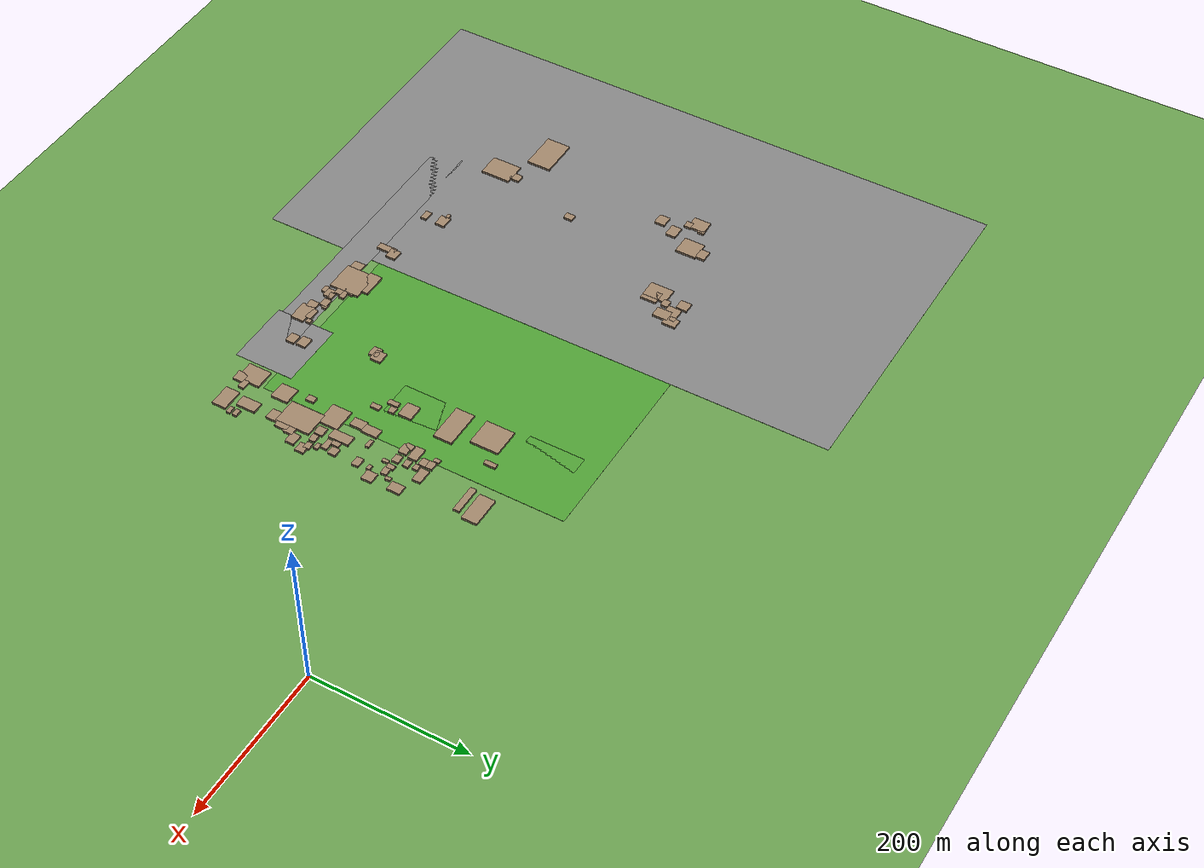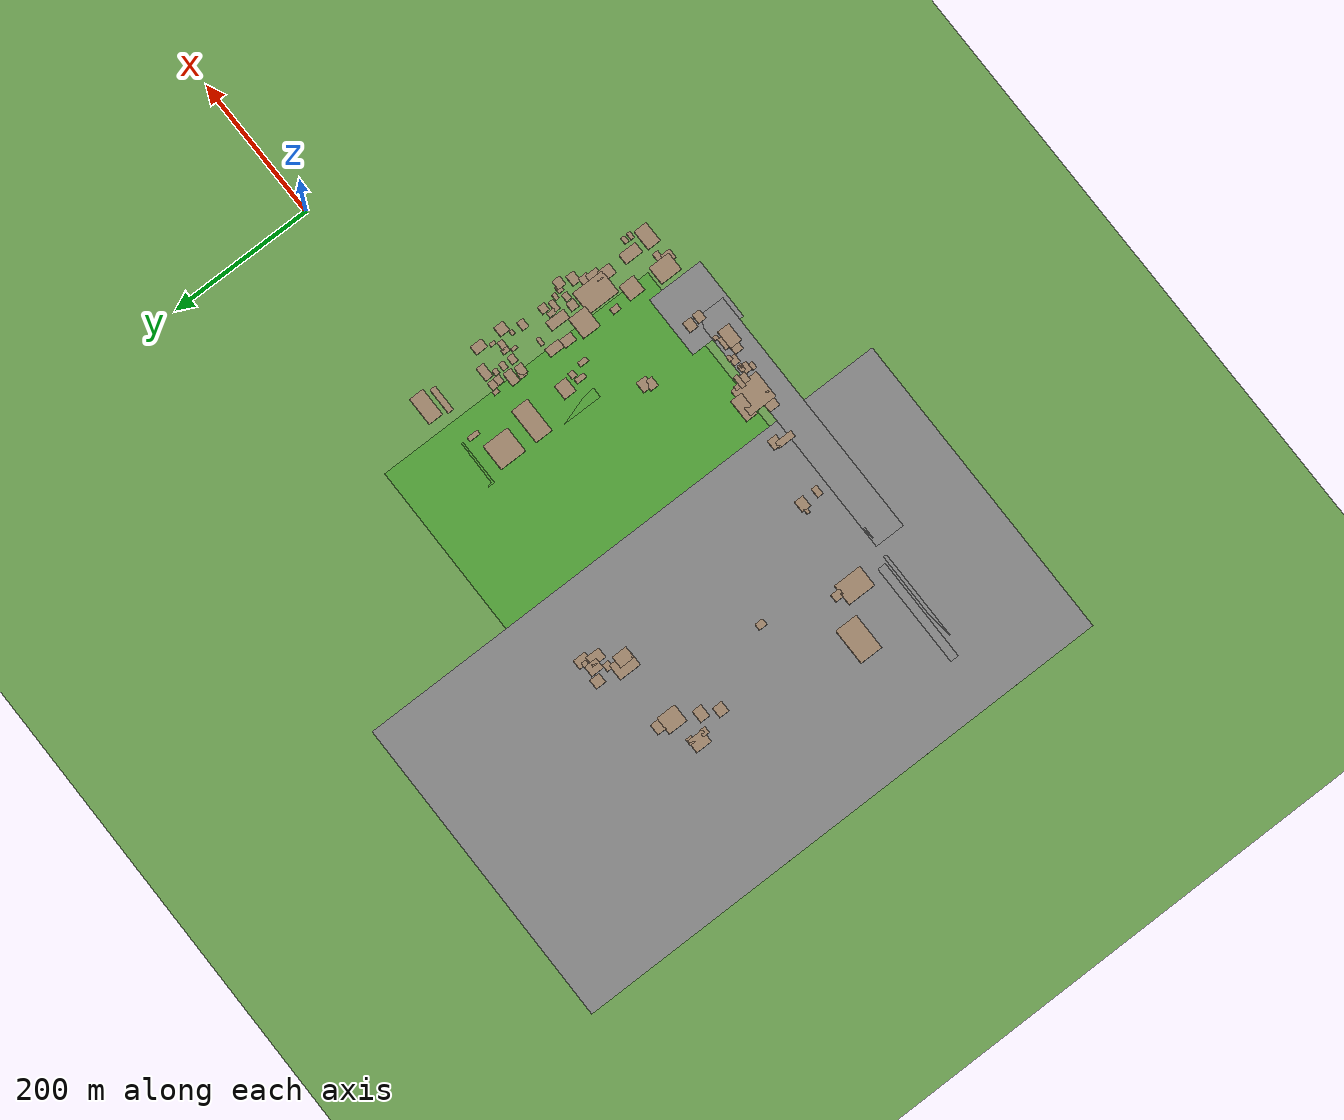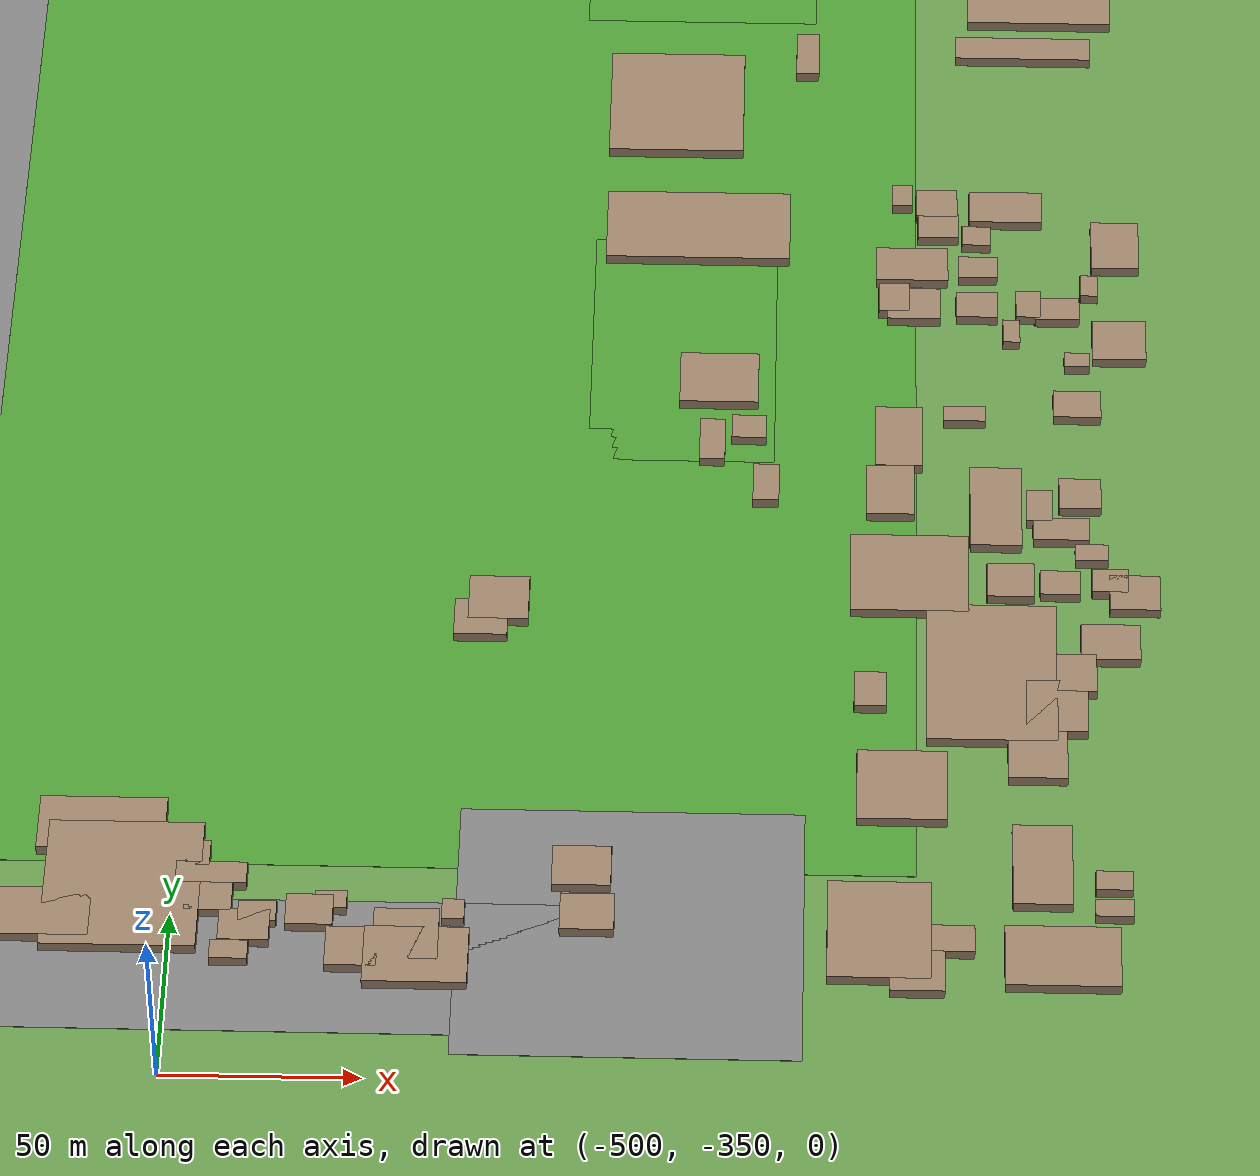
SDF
<sdf version="1.9">
 <world name="kimje_farmland">
  <model name="ground_plane">
   <static>true</static>
   <link name="link">
    <collision name="collision">
     <geometry><plane><normal>0 0 1</normal><size>2000 2000</size></plane></geometry>
    </collision>
    <visual name="visual">
     <geometry><plane><normal>0 0 1</normal><size>2000 2000</size></plane></geometry>
     <material><ambient>0.4 0.6 0.3 1</ambient><diffuse>0.4 0.6 0.3 1</diffuse></material>
    </visual>
   </link>
  </model>
  <model name="osm_83">
   <static>true</static>
   <pose>-772.64 -57.62 0.040 0 0 0</pose>
   <link name="link">
    <collision name="collision"><geometry><box><size>432.89 768.16 0.080</size></box></geometry></collision>
    <visual name="visual">
     <geometry><box><size>432.89 768.16 0.080</size></box></geometry>
     <material><ambient>0.5 0.5 0.5 1</ambient><diffuse>0.5 0.5 0.5 1</diffuse></material>
    </visual>
   </link>
  </model>
  <model name="osm_96">
   <static>true</static>
   <pose>-573.87 -315.27 0.040 0 0 0</pose>
   <link name="link">
    <collision name="collision"><geometry><box><size>356.05 41.66 0.080</size></box></geometry></collision>
    <visual name="visual">
     <geometry><box><size>356.05 41.66 0.080</size></box></geometry>
     <material><ambient>0.5 0.5 0.5 1</ambient><diffuse>0.5 0.5 0.5 1</diffuse></material>
    </visual>
   </link>
  </model>
  <model name="osm_166">
   <static>true</static>
   <pose>-386.31 -302.92 0.040 0 0 0</pose>
   <link name="link">
    <collision name="collision"><geometry><box><size>86.27 78.35 0.080</size></box></geometry></collision>
    <visual name="visual">
     <geometry><box><size>86.27 78.35 0.080</size></box></geometry>
     <material><ambient>0.5 0.5 0.5 1</ambient><diffuse>0.5 0.5 0.5 1</diffuse></material>
    </visual>
   </link>
  </model>
  <model name="osm_167">
   <static>true</static>
   <pose>-846.39 -284.35 0.040 0 0 0</pose>
   <link name="link">
    <collision name="collision"><geometry><box><size>143.22 11.58 0.080</size></box></geometry></collision>
    <visual name="visual">
     <geometry><box><size>143.22 11.58 0.080</size></box></geometry>
     <material><ambient>0.5 0.5 0.5 1</ambient><diffuse>0.5 0.5 0.5 1</diffuse></material>
    </visual>
   </link>
  </model>
  <model name="osm_448">
   <static>true</static>
   <pose>-643.78 72.86 1.500 0 0 0</pose>
   <link name="link">
    <collision name="collision"><geometry><box><size>13.10 18.03 3.000</size></box></geometry></collision>
    <visual name="visual">
     <geometry><box><size>13.10 18.03 3.000</size></box></geometry>
     <material><ambient>0.6 0.5 0.4 1</ambient><diffuse>0.6 0.5 0.4 1</diffuse></material>
    </visual>
   </link>
  </model>
  <model name="osm_449">
   <static>true</static>
   <pose>-648.57 72.91 1.500 0 0 0</pose>
   <link name="link">
    <collision name="collision"><geometry><box><size>6.26 7.10 3.000</size></box></geometry></collision>
    <visual name="visual">
     <geometry><box><size>6.26 7.10 3.000</size></box></geometry>
     <material><ambient>0.6 0.5 0.4 1</ambient><diffuse>0.6 0.5 0.4 1</diffuse></material>
    </visual>
   </link>
  </model>
  <model name="osm_450">
   <static>true</static>
   <pose>-658.95 66.86 1.500 0 0 0</pose>
   <link name="link">
    <collision name="collision"><geometry><box><size>14.88 17.79 3.000</size></box></geometry></collision>
    <visual name="visual">
     <geometry><box><size>14.88 17.79 3.000</size></box></geometry>
     <material><ambient>0.6 0.5 0.4 1</ambient><diffuse>0.6 0.5 0.4 1</diffuse></material>
    </visual>
   </link>
  </model>
  <model name="osm_452">
   <static>true</static>
   <pose>-674.98 73.52 1.500 0 0 0</pose>
   <link name="link">
    <collision name="collision"><geometry><box><size>13.59 14.40 3.000</size></box></geometry></collision>
    <visual name="visual">
     <geometry><box><size>13.59 14.40 3.000</size></box></geometry>
     <material><ambient>0.6 0.5 0.4 1</ambient><diffuse>0.6 0.5 0.4 1</diffuse></material>
    </visual>
   </link>
  </model>
  <model name="osm_464">
   <static>true</static>
   <pose>-808.24 21.42 1.500 0 0 0</pose>
   <link name="link">
    <collision name="collision"><geometry><box><size>18.40 22.50 3.000</size></box></geometry></collision>
    <visual name="visual">
     <geometry><box><size>18.40 22.50 3.000</size></box></geometry>
     <material><ambient>0.6 0.5 0.4 1</ambient><diffuse>0.6 0.5 0.4 1</diffuse></material>
    </visual>
   </link>
  </model>
  <model name="osm_465">
   <static>true</static>
   <pose>-800.88 29.24 1.500 0 0 0</pose>
   <link name="link">
    <collision name="collision"><geometry><box><size>9.25 8.44 3.000</size></box></geometry></collision>
    <visual name="visual">
     <geometry><box><size>9.25 8.44 3.000</size></box></geometry>
     <material><ambient>0.6 0.5 0.4 1</ambient><diffuse>0.6 0.5 0.4 1</diffuse></material>
    </visual>
   </link>
  </model>
  <model name="osm_466">
   <static>true</static>
   <pose>-763.95 50.22 1.500 0 0 0</pose>
   <link name="link">
    <collision name="collision"><geometry><box><size>15.16 12.04 3.000</size></box></geometry></collision>
    <visual name="visual">
     <geometry><box><size>15.16 12.04 3.000</size></box></geometry>
     <material><ambient>0.6 0.5 0.4 1</ambient><diffuse>0.6 0.5 0.4 1</diffuse></material>
    </visual>
   </link>
  </model>
  <model name="osm_467">
   <static>true</static>
   <pose>-766.87 31.37 1.500 0 0 0</pose>
   <link name="link">
    <collision name="collision"><geometry><box><size>24.86 27.17 3.000</size></box></geometry></collision>
    <visual name="visual">
     <geometry><box><size>24.86 27.17 3.000</size></box></geometry>
     <material><ambient>0.6 0.5 0.4 1</ambient><diffuse>0.6 0.5 0.4 1</diffuse></material>
    </visual>
   </link>
  </model>
  <model name="osm_468">
   <static>true</static>
   <pose>-782.70 -0.61 1.500 0 0 0</pose>
   <link name="link">
    <collision name="collision"><geometry><box><size>17.42 13.56 3.000</size></box></geometry></collision>
    <visual name="visual">
     <geometry><box><size>17.42 13.56 3.000</size></box></geometry>
     <material><ambient>0.6 0.5 0.4 1</ambient><diffuse>0.6 0.5 0.4 1</diffuse></material>
    </visual>
   </link>
  </model>
  <model name="osm_469">
   <static>true</static>
   <pose>-802.47 9.88 1.500 0 0 0</pose>
   <link name="link">
    <collision name="collision"><geometry><box><size>9.20 9.12 3.000</size></box></geometry></collision>
    <visual name="visual">
     <geometry><box><size>9.20 9.12 3.000</size></box></geometry>
     <material><ambient>0.6 0.5 0.4 1</ambient><diffuse>0.6 0.5 0.4 1</diffuse></material>
    </visual>
   </link>
  </model>
  <model name="osm_470">
   <static>true</static>
   <pose>-650.59 57.68 1.500 0 0 0</pose>
   <link name="link">
    <collision name="collision"><geometry><box><size>14.46 19.74 3.000</size></box></geometry></collision>
    <visual name="visual">
     <geometry><box><size>14.46 19.74 3.000</size></box></geometry>
     <material><ambient>0.6 0.5 0.4 1</ambient><diffuse>0.6 0.5 0.4 1</diffuse></material>
    </visual>
   </link>
  </model>
  <model name="osm_471">
   <static>true</static>
   <pose>-668.01 52.64 1.500 0 0 0</pose>
   <link name="link">
    <collision name="collision"><geometry><box><size>10.40 9.22 3.000</size></box></geometry></collision>
    <visual name="visual">
     <geometry><box><size>10.40 9.22 3.000</size></box></geometry>
     <material><ambient>0.6 0.5 0.4 1</ambient><diffuse>0.6 0.5 0.4 1</diffuse></material>
    </visual>
   </link>
  </model>
  <model name="osm_472">
   <static>true</static>
   <pose>-679.62 35.79 1.500 0 0 0</pose>
   <link name="link">
    <collision name="collision"><geometry><box><size>22.39 30.62 3.000</size></box></geometry></collision>
    <visual name="visual">
     <geometry><box><size>22.39 30.62 3.000</size></box></geometry>
     <material><ambient>0.6 0.5 0.4 1</ambient><diffuse>0.6 0.5 0.4 1</diffuse></material>
    </visual>
   </link>
  </model>
  <model name="osm_473">
   <static>true</static>
   <pose>-670.96 31.44 1.500 0 0 0</pose>
   <link name="link">
    <collision name="collision"><geometry><box><size>16.77 21.03 3.000</size></box></geometry></collision>
    <visual name="visual">
     <geometry><box><size>16.77 21.03 3.000</size></box></geometry>
     <material><ambient>0.6 0.5 0.4 1</ambient><diffuse>0.6 0.5 0.4 1</diffuse></material>
    </visual>
   </link>
  </model>
  <model name="osm_474">
   <static>true</static>
   <pose>-380.39 -11.53 1.500 0 0 0</pose>
   <link name="link">
    <collision name="collision"><geometry><box><size>36.44 37.47 3.000</size></box></geometry></collision>
    <visual name="visual">
     <geometry><box><size>36.44 37.47 3.000</size></box></geometry>
     <material><ambient>0.6 0.5 0.4 1</ambient><diffuse>0.6 0.5 0.4 1</diffuse></material>
    </visual>
   </link>
  </model>
  <model name="osm_475">
   <static>true</static>
   <pose>-373.70 -58.84 1.500 0 0 0</pose>
   <link name="link">
    <collision name="collision"><geometry><box><size>49.23 24.55 3.000</size></box></geometry></collision>
    <visual name="visual">
     <geometry><box><size>49.23 24.55 3.000</size></box></geometry>
     <material><ambient>0.6 0.5 0.4 1</ambient><diffuse>0.6 0.5 0.4 1</diffuse></material>
    </visual>
   </link>
  </model>
  <model name="osm_476">
   <static>true</static>
   <pose>-793.46 -22.55 1.500 0 0 0</pose>
   <link name="link">
    <collision name="collision"><geometry><box><size>14.88 13.93 3.000</size></box></geometry></collision>
    <visual name="visual">
     <geometry><box><size>14.88 13.93 3.000</size></box></geometry>
     <material><ambient>0.6 0.5 0.4 1</ambient><diffuse>0.6 0.5 0.4 1</diffuse></material>
    </visual>
   </link>
  </model>
  <model name="osm_477">
   <static>true</static>
   <pose>-741.51 -124.93 1.500 0 0 0</pose>
   <link name="link">
    <collision name="collision"><geometry><box><size>9.24 11.82 3.000</size></box></geometry></collision>
    <visual name="visual">
     <geometry><box><size>9.24 11.82 3.000</size></box></geometry>
     <material><ambient>0.6 0.5 0.4 1</ambient><diffuse>0.6 0.5 0.4 1</diffuse></material>
    </visual>
   </link>
  </model>
  <model name="osm_478">
   <static>true</static>
   <pose>-422.45 -194.79 1.500 0 0 0</pose>
   <link name="link">
    <collision name="collision"><geometry><box><size>15.44 14.47 3.000</size></box></geometry></collision>
    <visual name="visual">
     <geometry><box><size>15.44 14.47 3.000</size></box></geometry>
     <material><ambient>0.6 0.5 0.4 1</ambient><diffuse>0.6 0.5 0.4 1</diffuse></material>
    </visual>
   </link>
  </model>
  <model name="osm_479">
   <static>true</static>
   <pose>-426.82 -201.58 1.500 0 0 0</pose>
   <link name="link">
    <collision name="collision"><geometry><box><size>13.68 11.91 3.000</size></box></geometry></collision>
    <visual name="visual">
     <geometry><box><size>13.68 11.91 3.000</size></box></geometry>
     <material><ambient>0.6 0.5 0.4 1</ambient><diffuse>0.6 0.5 0.4 1</diffuse></material>
    </visual>
   </link>
  </model>
  <model name="osm_480">
   <static>true</static>
   <pose>-773.59 -243.72 1.500 0 0 0</pose>
   <link name="link">
    <collision name="collision"><geometry><box><size>29.43 39.28 3.000</size></box></geometry></collision>
    <visual name="visual">
     <geometry><box><size>29.43 39.28 3.000</size></box></geometry>
     <material><ambient>0.6 0.5 0.4 1</ambient><diffuse>0.6 0.5 0.4 1</diffuse></material>
    </visual>
   </link>
  </model>
  <model name="osm_481">
   <static>true</static>
   <pose>-770.52 -220.08 1.500 0 0 0</pose>
   <link name="link">
    <collision name="collision"><geometry><box><size>10.92 13.26 3.000</size></box></geometry></collision>
    <visual name="visual">
     <geometry><box><size>10.92 13.26 3.000</size></box></geometry>
     <material><ambient>0.6 0.5 0.4 1</ambient><diffuse>0.6 0.5 0.4 1</diffuse></material>
    </visual>
   </link>
  </model>
  <model name="osm_482">
   <static>true</static>
   <pose>-828.37 -207.15 1.500 0 0 0</pose>
   <link name="link">
    <collision name="collision"><geometry><box><size>50.27 31.74 3.000</size></box></geometry></collision>
    <visual name="visual">
     <geometry><box><size>50.27 31.74 3.000</size></box></geometry>
     <material><ambient>0.6 0.5 0.4 1</ambient><diffuse>0.6 0.5 0.4 1</diffuse></material>
    </visual>
   </link>
  </model>
  <model name="osm_484">
   <static>true</static>
   <pose>-509.42 -80.60 0.025 0 0 0</pose>
   <link name="link">
    <collision name="collision"><geometry><box><size>388.42 405.14 0.050</size></box></geometry></collision>
    <visual name="visual">
     <geometry><box><size>388.42 405.14 0.050</size></box></geometry>
     <material><ambient>0.3 0.6 0.2 1</ambient><diffuse>0.3 0.6 0.2 1</diffuse></material>
    </visual>
   </link>
  </model>
  <model name="osm_485">
   <static>true</static>
   <pose>-773.03 -114.44 0.025 0 0 0</pose>
   <link name="link">
    <collision name="collision"><geometry><box><size>46.98 53.28 0.050</size></box></geometry></collision>
    <visual name="visual">
     <geometry><box><size>46.98 53.28 0.050</size></box></geometry>
     <material><ambient>0.3 0.6 0.2 1</ambient><diffuse>0.3 0.6 0.2 1</diffuse></material>
    </visual>
   </link>
  </model>
  <model name="osm_565">
   <static>true</static>
   <pose>-281.17 32.13 1.500 0 0 0</pose>
   <link name="link">
    <collision name="collision"><geometry><box><size>39.31 20.51 3.000</size></box></geometry></collision>
    <visual name="visual">
     <geometry><box><size>39.31 20.51 3.000</size></box></geometry>
     <material><ambient>0.6 0.5 0.4 1</ambient><diffuse>0.6 0.5 0.4 1</diffuse></material>
    </visual>
   </link>
  </model>
  <model name="osm_566">
   <static>true</static>
   <pose>-285.81 11.68 1.500 0 0 0</pose>
   <link name="link">
    <collision name="collision"><geometry><box><size>36.85 8.17 3.000</size></box></geometry></collision>
    <visual name="visual">
     <geometry><box><size>36.85 8.17 3.000</size></box></geometry>
     <material><ambient>0.6 0.5 0.4 1</ambient><diffuse>0.6 0.5 0.4 1</diffuse></material>
    </visual>
   </link>
  </model>
  <model name="osm_567">
   <static>true</static>
   <pose>-344.84 8.14 1.500 0 0 0</pose>
   <link name="link">
    <collision name="collision"><geometry><box><size>6.12 15.64 3.000</size></box></geometry></collision>
    <visual name="visual">
     <geometry><box><size>6.12 15.64 3.000</size></box></geometry>
     <material><ambient>0.6 0.5 0.4 1</ambient><diffuse>0.6 0.5 0.4 1</diffuse></material>
    </visual>
   </link>
  </model>
  <model name="osm_568">
   <static>true</static>
   <pose>-318.80 -46.38 1.500 0 0 0</pose>
   <link name="link">
    <collision name="collision"><geometry><box><size>5.47 7.83 3.000</size></box></geometry></collision>
    <visual name="visual">
     <geometry><box><size>5.47 7.83 3.000</size></box></geometry>
     <material><ambient>0.6 0.5 0.4 1</ambient><diffuse>0.6 0.5 0.4 1</diffuse></material>
    </visual>
   </link>
  </model>
  <model name="osm_569">
   <static>true</static>
   <pose>-309.64 -49.11 1.500 0 0 0</pose>
   <link name="link">
    <collision name="collision"><geometry><box><size>11.01 9.86 3.000</size></box></geometry></collision>
    <visual name="visual">
     <geometry><box><size>11.01 9.86 3.000</size></box></geometry>
     <material><ambient>0.6 0.5 0.4 1</ambient><diffuse>0.6 0.5 0.4 1</diffuse></material>
    </visual>
   </link>
  </model>
  <model name="osm_570">
   <static>true</static>
   <pose>-291.08 -50.22 1.500 0 0 0</pose>
   <link name="link">
    <collision name="collision"><geometry><box><size>19.53 11.29 3.000</size></box></geometry></collision>
    <visual name="visual">
     <geometry><box><size>19.53 11.29 3.000</size></box></geometry>
     <material><ambient>0.6 0.5 0.4 1</ambient><diffuse>0.6 0.5 0.4 1</diffuse></material>
    </visual>
   </link>
  </model>
  <model name="osm_571">
   <static>true</static>
   <pose>-309.20 -57.67 1.500 0 0 0</pose>
   <link name="link">
    <collision name="collision"><geometry><box><size>10.92 8.92 3.000</size></box></geometry></collision>
    <visual name="visual">
     <geometry><box><size>10.92 8.92 3.000</size></box></geometry>
     <material><ambient>0.6 0.5 0.4 1</ambient><diffuse>0.6 0.5 0.4 1</diffuse></material>
    </visual>
   </link>
  </model>
  <model name="osm_572">
   <static>true</static>
   <pose>-299.00 -61.29 1.500 0 0 0</pose>
   <link name="link">
    <collision name="collision"><geometry><box><size>7.68 6.84 3.000</size></box></geometry></collision>
    <visual name="visual">
     <geometry><box><size>7.68 6.84 3.000</size></box></geometry>
     <material><ambient>0.6 0.5 0.4 1</ambient><diffuse>0.6 0.5 0.4 1</diffuse></material>
    </visual>
   </link>
  </model>
  <model name="osm_573">
   <static>true</static>
   <pose>-298.64 -73.10 1.500 0 0 0</pose>
   <link name="link">
    <collision name="collision"><geometry><box><size>10.24 7.68 3.000</size></box></geometry></collision>
    <visual name="visual">
     <geometry><box><size>10.24 7.68 3.000</size></box></geometry>
     <material><ambient>0.6 0.5 0.4 1</ambient><diffuse>0.6 0.5 0.4 1</diffuse></material>
    </visual>
   </link>
  </model>
  <model name="osm_574">
   <static>true</static>
   <pose>-316.21 -72.32 1.500 0 0 0</pose>
   <link name="link">
    <collision name="collision"><geometry><box><size>19.06 11.87 3.000</size></box></geometry></collision>
    <visual name="visual">
     <geometry><box><size>19.06 11.87 3.000</size></box></geometry>
     <material><ambient>0.6 0.5 0.4 1</ambient><diffuse>0.6 0.5 0.4 1</diffuse></material>
    </visual>
   </link>
  </model>
  <model name="osm_575">
   <static>true</static>
   <pose>-321.10 -84.77 1.500 0 0 0</pose>
   <link name="link">
    <collision name="collision"><geometry><box><size>7.98 10.13 3.000</size></box></geometry></collision>
    <visual name="visual">
     <geometry><box><size>7.98 10.13 3.000</size></box></geometry>
     <material><ambient>0.6 0.5 0.4 1</ambient><diffuse>0.6 0.5 0.4 1</diffuse></material>
    </visual>
   </link>
  </model>
  <model name="osm_576">
   <static>true</static>
   <pose>-315.74 -87.01 1.500 0 0 0</pose>
   <link name="link">
    <collision name="collision"><geometry><box><size>14.20 11.08 3.000</size></box></geometry></collision>
    <visual name="visual">
     <geometry><box><size>14.20 11.08 3.000</size></box></geometry>
     <material><ambient>0.6 0.5 0.4 1</ambient><diffuse>0.6 0.5 0.4 1</diffuse></material>
    </visual>
   </link>
  </model>
  <model name="osm_577">
   <static>true</static>
   <pose>-299.04 -87.03 1.500 0 0 0</pose>
   <link name="link">
    <collision name="collision"><geometry><box><size>10.94 9.15 3.000</size></box></geometry></collision>
    <visual name="visual">
     <geometry><box><size>10.94 9.15 3.000</size></box></geometry>
     <material><ambient>0.6 0.5 0.4 1</ambient><diffuse>0.6 0.5 0.4 1</diffuse></material>
    </visual>
   </link>
  </model>
  <model name="osm_578">
   <static>true</static>
   <pose>-261.89 -64.07 1.500 0 0 0</pose>
   <link name="link">
    <collision name="collision"><geometry><box><size>12.71 17.05 3.000</size></box></geometry></collision>
    <visual name="visual">
     <geometry><box><size>12.71 17.05 3.000</size></box></geometry>
     <material><ambient>0.6 0.5 0.4 1</ambient><diffuse>0.6 0.5 0.4 1</diffuse></material>
    </visual>
   </link>
  </model>
  <model name="osm_579">
   <static>true</static>
   <pose>-285.34 -86.53 1.500 0 0 0</pose>
   <link name="link">
    <collision name="collision"><geometry><box><size>6.54 9.56 3.000</size></box></geometry></collision>
    <visual name="visual">
     <geometry><box><size>6.54 9.56 3.000</size></box></geometry>
     <material><ambient>0.6 0.5 0.4 1</ambient><diffuse>0.6 0.5 0.4 1</diffuse></material>
    </visual>
   </link>
  </model>
  <model name="osm_580">
   <static>true</static>
   <pose>-277.65 -88.10 1.500 0 0 0</pose>
   <link name="link">
    <collision name="collision"><geometry><box><size>11.69 7.85 3.000</size></box></geometry></collision>
    <visual name="visual">
     <geometry><box><size>11.69 7.85 3.000</size></box></geometry>
     <material><ambient>0.6 0.5 0.4 1</ambient><diffuse>0.6 0.5 0.4 1</diffuse></material>
    </visual>
   </link>
  </model>
  <model name="osm_581">
   <static>true</static>
   <pose>-269.05 -79.36 1.500 0 0 0</pose>
   <link name="link">
    <collision name="collision"><geometry><box><size>4.64 7.47 3.000</size></box></geometry></collision>
    <visual name="visual">
     <geometry><box><size>4.64 7.47 3.000</size></box></geometry>
     <material><ambient>0.6 0.5 0.4 1</ambient><diffuse>0.6 0.5 0.4 1</diffuse></material>
    </visual>
   </link>
  </model>
  <model name="osm_583">
   <static>true</static>
   <pose>-261.40 -99.37 1.500 0 0 0</pose>
   <link name="link">
    <collision name="collision"><geometry><box><size>14.09 14.00 3.000</size></box></geometry></collision>
    <visual name="visual">
     <geometry><box><size>14.09 14.00 3.000</size></box></geometry>
     <material><ambient>0.6 0.5 0.4 1</ambient><diffuse>0.6 0.5 0.4 1</diffuse></material>
    </visual>
   </link>
  </model>
  <model name="osm_584">
   <static>true</static>
   <pose>-289.91 -96.60 1.500 0 0 0</pose>
   <link name="link">
    <collision name="collision"><geometry><box><size>4.47 8.08 3.000</size></box></geometry></collision>
    <visual name="visual">
     <geometry><box><size>4.47 8.08 3.000</size></box></geometry>
     <material><ambient>0.6 0.5 0.4 1</ambient><diffuse>0.6 0.5 0.4 1</diffuse></material>
    </visual>
   </link>
  </model>
  <model name="osm_585">
   <static>true</static>
   <pose>-272.66 -106.80 1.500 0 0 0</pose>
   <link name="link">
    <collision name="collision"><geometry><box><size>6.64 4.99 3.000</size></box></geometry></collision>
    <visual name="visual">
     <geometry><box><size>6.64 4.99 3.000</size></box></geometry>
     <material><ambient>0.6 0.5 0.4 1</ambient><diffuse>0.6 0.5 0.4 1</diffuse></material>
    </visual>
   </link>
  </model>
  <model name="osm_593">
   <static>true</static>
   <pose>-272.89 -122.96 1.500 0 0 0</pose>
   <link name="link">
    <collision name="collision"><geometry><box><size>12.45 9.34 3.000</size></box></geometry></collision>
    <visual name="visual">
     <geometry><box><size>12.45 9.34 3.000</size></box></geometry>
     <material><ambient>0.6 0.5 0.4 1</ambient><diffuse>0.6 0.5 0.4 1</diffuse></material>
    </visual>
   </link>
  </model>
  <model name="osm_594">
   <static>true</static>
   <pose>-302.48 -127.07 1.500 0 0 0</pose>
   <link name="link">
    <collision name="collision"><geometry><box><size>11.05 5.17 3.000</size></box></geometry></collision>
    <visual name="visual">
     <geometry><box><size>11.05 5.17 3.000</size></box></geometry>
     <material><ambient>0.6 0.5 0.4 1</ambient><diffuse>0.6 0.5 0.4 1</diffuse></material>
    </visual>
   </link>
  </model>
  <model name="osm_595">
   <static>true</static>
   <pose>-367.14 -115.45 1.500 0 0 0</pose>
   <link name="link">
    <collision name="collision"><geometry><box><size>20.71 17.53 3.000</size></box></geometry></collision>
    <visual name="visual">
     <geometry><box><size>20.71 17.53 3.000</size></box></geometry>
     <material><ambient>0.6 0.5 0.4 1</ambient><diffuse>0.6 0.5 0.4 1</diffuse></material>
    </visual>
   </link>
  </model>
  <model name="osm_596">
   <static>true</static>
   <pose>-359.04 -132.98 1.500 0 0 0</pose>
   <link name="link">
    <collision name="collision"><geometry><box><size>9.01 7.93 3.000</size></box></geometry></collision>
    <visual name="visual">
     <geometry><box><size>9.01 7.93 3.000</size></box></geometry>
     <material><ambient>0.6 0.5 0.4 1</ambient><diffuse>0.6 0.5 0.4 1</diffuse></material>
    </visual>
   </link>
  </model>
  <model name="osm_597">
   <static>true</static>
   <pose>-368.60 -137.68 1.500 0 0 0</pose>
   <link name="link">
    <collision name="collision"><geometry><box><size>6.64 14.13 3.000</size></box></geometry></collision>
    <visual name="visual">
     <geometry><box><size>6.64 14.13 3.000</size></box></geometry>
     <material><ambient>0.6 0.5 0.4 1</ambient><diffuse>0.6 0.5 0.4 1</diffuse></material>
    </visual>
   </link>
  </model>
  <model name="osm_598">
   <static>true</static>
   <pose>-354.37 -152.78 1.500 0 0 0</pose>
   <link name="link">
    <collision name="collision"><geometry><box><size>6.77 12.59 3.000</size></box></geometry></collision>
    <visual name="visual">
     <geometry><box><size>6.77 12.59 3.000</size></box></geometry>
     <material><ambient>0.6 0.5 0.4 1</ambient><diffuse>0.6 0.5 0.4 1</diffuse></material>
    </visual>
   </link>
  </model>
  <model name="osm_599">
   <static>true</static>
   <pose>-319.81 -135.61 1.500 0 0 0</pose>
   <link name="link">
    <collision name="collision"><geometry><box><size>12.31 20.86 3.000</size></box></geometry></collision>
    <visual name="visual">
     <geometry><box><size>12.31 20.86 3.000</size></box></geometry>
     <material><ambient>0.6 0.5 0.4 1</ambient><diffuse>0.6 0.5 0.4 1</diffuse></material>
    </visual>
   </link>
  </model>
  <model name="osm_600">
   <static>true</static>
   <pose>-321.91 -154.72 1.500 0 0 0</pose>
   <link name="link">
    <collision name="collision"><geometry><box><size>12.43 17.11 3.000</size></box></geometry></collision>
    <visual name="visual">
     <geometry><box><size>12.43 17.11 3.000</size></box></geometry>
     <material><ambient>0.6 0.5 0.4 1</ambient><diffuse>0.6 0.5 0.4 1</diffuse></material>
    </visual>
   </link>
  </model>
  <model name="osm_601">
   <static>true</static>
   <pose>-294.60 -160.02 1.500 0 0 0</pose>
   <link name="link">
    <collision name="collision"><geometry><box><size>13.39 27.25 3.000</size></box></geometry></collision>
    <visual name="visual">
     <geometry><box><size>13.39 27.25 3.000</size></box></geometry>
     <material><ambient>0.6 0.5 0.4 1</ambient><diffuse>0.6 0.5 0.4 1</diffuse></material>
    </visual>
   </link>
  </model>
  <model name="osm_602">
   <static>true</static>
   <pose>-317.00 -183.77 1.500 0 0 0</pose>
   <link name="link">
    <collision name="collision"><geometry><box><size>30.40 26.02 3.000</size></box></geometry></collision>
    <visual name="visual">
     <geometry><box><size>30.40 26.02 3.000</size></box></geometry>
     <material><ambient>0.6 0.5 0.4 1</ambient><diffuse>0.6 0.5 0.4 1</diffuse></material>
    </visual>
   </link>
  </model>
  <model name="osm_603">
   <static>true</static>
   <pose>-283.26 -159.48 1.500 0 0 0</pose>
   <link name="link">
    <collision name="collision"><geometry><box><size>6.65 10.54 3.000</size></box></geometry></collision>
    <visual name="visual">
     <geometry><box><size>6.65 10.54 3.000</size></box></geometry>
     <material><ambient>0.6 0.5 0.4 1</ambient><diffuse>0.6 0.5 0.4 1</diffuse></material>
    </visual>
   </link>
  </model>
  <model name="osm_604">
   <static>true</static>
   <pose>-272.64 -155.04 1.500 0 0 0</pose>
   <link name="link">
    <collision name="collision"><geometry><box><size>10.91 10.42 3.000</size></box></geometry></collision>
    <visual name="visual">
     <geometry><box><size>10.91 10.42 3.000</size></box></geometry>
     <material><ambient>0.6 0.5 0.4 1</ambient><diffuse>0.6 0.5 0.4 1</diffuse></material>
    </visual>
   </link>
  </model>
  <model name="osm_605">
   <static>true</static>
   <pose>-277.67 -167.59 1.500 0 0 0</pose>
   <link name="link">
    <collision name="collision"><geometry><box><size>14.54 7.63 3.000</size></box></geometry></collision>
    <visual name="visual">
     <geometry><box><size>14.54 7.63 3.000</size></box></geometry>
     <material><ambient>0.6 0.5 0.4 1</ambient><diffuse>0.6 0.5 0.4 1</diffuse></material>
    </visual>
   </link>
  </model>
  <model name="osm_606">
   <static>true</static>
   <pose>-269.86 -175.68 1.500 0 0 0</pose>
   <link name="link">
    <collision name="collision"><geometry><box><size>8.55 5.49 3.000</size></box></geometry></collision>
    <visual name="visual">
     <geometry><box><size>8.55 5.49 3.000</size></box></geometry>
     <material><ambient>0.6 0.5 0.4 1</ambient><diffuse>0.6 0.5 0.4 1</diffuse></material>
    </visual>
   </link>
  </model>
  <model name="osm_607">
   <static>true</static>
   <pose>-290.97 -185.68 1.500 0 0 0</pose>
   <link name="link">
    <collision name="collision"><geometry><box><size>12.14 11.34 3.000</size></box></geometry></collision>
    <visual name="visual">
     <geometry><box><size>12.14 11.34 3.000</size></box></geometry>
     <material><ambient>0.6 0.5 0.4 1</ambient><diffuse>0.6 0.5 0.4 1</diffuse></material>
    </visual>
   </link>
  </model>
  <model name="osm_608">
   <static>true</static>
   <pose>-278.21 -186.32 1.500 0 0 0</pose>
   <link name="link">
    <collision name="collision"><geometry><box><size>10.35 8.06 3.000</size></box></geometry></collision>
    <visual name="visual">
     <geometry><box><size>10.35 8.06 3.000</size></box></geometry>
     <material><ambient>0.6 0.5 0.4 1</ambient><diffuse>0.6 0.5 0.4 1</diffuse></material>
    </visual>
   </link>
  </model>
  <model name="osm_617">
   <static>true</static>
   <pose>-259.05 -189.37 1.500 0 0 0</pose>
   <link name="link">
    <collision name="collision"><geometry><box><size>12.99 11.72 3.000</size></box></geometry></collision>
    <visual name="visual">
     <geometry><box><size>12.99 11.72 3.000</size></box></geometry>
     <material><ambient>0.6 0.5 0.4 1</ambient><diffuse>0.6 0.5 0.4 1</diffuse></material>
    </visual>
   </link>
  </model>
  <model name="osm_618">
   <static>true</static>
   <pose>-265.35 -185.28 1.500 0 0 0</pose>
   <link name="link">
    <collision name="collision"><geometry><box><size>9.31 7.79 3.000</size></box></geometry></collision>
    <visual name="visual">
     <geometry><box><size>9.31 7.79 3.000</size></box></geometry>
     <material><ambient>0.6 0.5 0.4 1</ambient><diffuse>0.6 0.5 0.4 1</diffuse></material>
    </visual>
   </link>
  </model>
  <model name="osm_659">
   <static>true</static>
   <pose>-265.57 -206.44 1.500 0 0 0</pose>
   <link name="link">
    <collision name="collision"><geometry><box><size>15.15 11.83 3.000</size></box></geometry></collision>
    <visual name="visual">
     <geometry><box><size>15.15 11.83 3.000</size></box></geometry>
     <material><ambient>0.6 0.5 0.4 1</ambient><diffuse>0.6 0.5 0.4 1</diffuse></material>
    </visual>
   </link>
  </model>
  <model name="osm_660">
   <static>true</static>
   <pose>-274.51 -217.08 1.500 0 0 0</pose>
   <link name="link">
    <collision name="collision"><geometry><box><size>10.36 12.40 3.000</size></box></geometry></collision>
    <visual name="visual">
     <geometry><box><size>10.36 12.40 3.000</size></box></geometry>
     <material><ambient>0.6 0.5 0.4 1</ambient><diffuse>0.6 0.5 0.4 1</diffuse></material>
    </visual>
   </link>
  </model>
  <model name="osm_662">
   <static>true</static>
   <pose>-279.57 -228.39 1.500 0 0 0</pose>
   <link name="link">
    <collision name="collision"><geometry><box><size>15.64 17.01 3.000</size></box></geometry></collision>
    <visual name="visual">
     <geometry><box><size>15.64 17.01 3.000</size></box></geometry>
     <material><ambient>0.6 0.5 0.4 1</ambient><diffuse>0.6 0.5 0.4 1</diffuse></material>
    </visual>
   </link>
  </model>
  <model name="osm_663">
   <static>true</static>
   <pose>-284.66 -243.18 1.500 0 0 0</pose>
   <link name="link">
    <collision name="collision"><geometry><box><size>15.01 18.66 3.000</size></box></geometry></collision>
    <visual name="visual">
     <geometry><box><size>15.01 18.66 3.000</size></box></geometry>
     <material><ambient>0.6 0.5 0.4 1</ambient><diffuse>0.6 0.5 0.4 1</diffuse></material>
    </visual>
   </link>
  </model>
  <model name="osm_664">
   <static>true</static>
   <pose>-296.09 -217.37 1.500 0 0 0</pose>
   <link name="link">
    <collision name="collision"><geometry><box><size>33.28 45.56 3.000</size></box></geometry></collision>
    <visual name="visual">
     <geometry><box><size>33.28 45.56 3.000</size></box></geometry>
     <material><ambient>0.6 0.5 0.4 1</ambient><diffuse>0.6 0.5 0.4 1</diffuse></material>
    </visual>
   </link>
  </model>
  <model name="osm_665">
   <static>true</static>
   <pose>-326.97 -223.76 1.500 0 0 0</pose>
   <link name="link">
    <collision name="collision"><geometry><box><size>8.25 11.37 3.000</size></box></geometry></collision>
    <visual name="visual">
     <geometry><box><size>8.25 11.37 3.000</size></box></geometry>
     <material><ambient>0.6 0.5 0.4 1</ambient><diffuse>0.6 0.5 0.4 1</diffuse></material>
    </visual>
   </link>
  </model>
  <model name="osm_668">
   <static>true</static>
   <pose>-374.19 59.16 0.025 0 0 0</pose>
   <link name="link">
    <collision name="collision"><geometry><box><size>62.88 71.92 0.050</size></box></geometry></collision>
    <visual name="visual">
     <geometry><box><size>62.88 71.92 0.050</size></box></geometry>
     <material><ambient>0.3 0.6 0.2 1</ambient><diffuse>0.3 0.6 0.2 1</diffuse></material>
    </visual>
   </link>
  </model>
  <model name="osm_669">
   <static>true</static>
   <pose>-376.69 -102.61 0.025 0 0 0</pose>
   <link name="link">
    <collision name="collision"><geometry><box><size>48.74 81.01 0.050</size></box></geometry></collision>
    <visual name="visual">
     <geometry><box><size>48.74 81.01 0.050</size></box></geometry>
     <material><ambient>0.3 0.6 0.2 1</ambient><diffuse>0.3 0.6 0.2 1</diffuse></material>
    </visual>
   </link>
  </model>
  <model name="osm_672">
   <static>true</static>
   <pose>-666.10 -254.74 1.500 0 0 0</pose>
   <link name="link">
    <collision name="collision"><geometry><box><size>7.67 4.88 3.000</size></box></geometry></collision>
    <visual name="visual">
     <geometry><box><size>7.67 4.88 3.000</size></box></geometry>
     <material><ambient>0.6 0.5 0.4 1</ambient><diffuse>0.6 0.5 0.4 1</diffuse></material>
    </visual>
   </link>
  </model>
  <model name="osm_673">
   <static>true</static>
   <pose>-656.13 -255.67 1.500 0 0 0</pose>
   <link name="link">
    <collision name="collision"><geometry><box><size>15.91 12.98 3.000</size></box></geometry></collision>
    <visual name="visual">
     <geometry><box><size>15.91 12.98 3.000</size></box></geometry>
     <material><ambient>0.6 0.5 0.4 1</ambient><diffuse>0.6 0.5 0.4 1</diffuse></material>
    </visual>
   </link>
  </model>
  <model name="osm_674">
   <static>true</static>
   <pose>-654.88 -279.33 1.500 0 0 0</pose>
   <link name="link">
    <collision name="collision"><geometry><box><size>13.08 8.23 3.000</size></box></geometry></collision>
    <visual name="visual">
     <geometry><box><size>13.08 8.23 3.000</size></box></geometry>
     <material><ambient>0.6 0.5 0.4 1</ambient><diffuse>0.6 0.5 0.4 1</diffuse></material>
    </visual>
   </link>
  </model>
  <model name="osm_675">
   <static>true</static>
   <pose>-576.16 -275.97 1.500 0 0 0</pose>
   <link name="link">
    <collision name="collision"><geometry><box><size>14.25 13.35 3.000</size></box></geometry></collision>
    <visual name="visual">
     <geometry><box><size>14.25 13.35 3.000</size></box></geometry>
     <material><ambient>0.6 0.5 0.4 1</ambient><diffuse>0.6 0.5 0.4 1</diffuse></material>
    </visual>
   </link>
  </model>
  <model name="osm_676">
   <static>true</static>
   <pose>-580.66 -287.93 1.500 0 0 0</pose>
   <link name="link">
    <collision name="collision"><geometry><box><size>8.93 24.33 3.000</size></box></geometry></collision>
    <visual name="visual">
     <geometry><box><size>8.93 24.33 3.000</size></box></geometry>
     <material><ambient>0.6 0.5 0.4 1</ambient><diffuse>0.6 0.5 0.4 1</diffuse></material>
    </visual>
   </link>
  </model>
  <model name="osm_677">
   <static>true</static>
   <pose>-518.80 -272.79 1.500 0 0 0</pose>
   <link name="link">
    <collision name="collision"><geometry><box><size>31.98 16.74 3.000</size></box></geometry></collision>
    <visual name="visual">
     <geometry><box><size>31.98 16.74 3.000</size></box></geometry>
     <material><ambient>0.6 0.5 0.4 1</ambient><diffuse>0.6 0.5 0.4 1</diffuse></material>
    </visual>
   </link>
  </model>
  <model name="osm_678">
   <static>true</static>
   <pose>-512.49 -292.14 1.500 0 0 0</pose>
   <link name="link">
    <collision name="collision"><geometry><box><size>38.90 39.67 3.000</size></box></geometry></collision>
    <visual name="visual">
     <geometry><box><size>38.90 39.67 3.000</size></box></geometry>
     <material><ambient>0.6 0.5 0.4 1</ambient><diffuse>0.6 0.5 0.4 1</diffuse></material>
    </visual>
   </link>
  </model>
  <model name="osm_679">
   <static>true</static>
   <pose>-531.43 -301.57 1.500 0 0 0</pose>
   <link name="link">
    <collision name="collision"><geometry><box><size>23.25 15.02 3.000</size></box></geometry></collision>
    <visual name="visual">
     <geometry><box><size>23.25 15.02 3.000</size></box></geometry>
     <material><ambient>0.6 0.5 0.4 1</ambient><diffuse>0.6 0.5 0.4 1</diffuse></material>
    </visual>
   </link>
  </model>
  <model name="osm_680">
   <static>true</static>
   <pose>-490.78 -295.09 1.500 0 0 0</pose>
   <link name="link">
    <collision name="collision"><geometry><box><size>11.78 10.25 3.000</size></box></geometry></collision>
    <visual name="visual">
     <geometry><box><size>11.78 10.25 3.000</size></box></geometry>
     <material><ambient>0.6 0.5 0.4 1</ambient><diffuse>0.6 0.5 0.4 1</diffuse></material>
    </visual>
   </link>
  </model>
  <model name="osm_681">
   <static>true</static>
   <pose>-494.16 -282.01 1.500 0 0 0</pose>
   <link name="link">
    <collision name="collision"><geometry><box><size>6.08 7.76 3.000</size></box></geometry></collision>
    <visual name="visual">
     <geometry><box><size>6.08 7.76 3.000</size></box></geometry>
     <material><ambient>0.6 0.5 0.4 1</ambient><diffuse>0.6 0.5 0.4 1</diffuse></material>
    </visual>
   </link>
  </model>
  <model name="osm_682">
   <static>true</static>
   <pose>-490.46 -288.17 1.500 0 0 0</pose>
   <link name="link">
    <collision name="collision"><geometry><box><size>17.72 6.62 3.000</size></box></geometry></collision>
    <visual name="visual">
     <geometry><box><size>17.72 6.62 3.000</size></box></geometry>
     <material><ambient>0.6 0.5 0.4 1</ambient><diffuse>0.6 0.5 0.4 1</diffuse></material>
    </visual>
   </link>
  </model>
  <model name="osm_683">
   <static>true</static>
   <pose>-478.42 -300.20 1.500 0 0 0</pose>
   <link name="link">
    <collision name="collision"><geometry><box><size>9.51 6.20 3.000</size></box></geometry></collision>
    <visual name="visual">
     <geometry><box><size>9.51 6.20 3.000</size></box></geometry>
     <material><ambient>0.6 0.5 0.4 1</ambient><diffuse>0.6 0.5 0.4 1</diffuse></material>
    </visual>
   </link>
  </model>
  <model name="osm_684">
   <static>true</static>
   <pose>-481.48 -304.77 1.500 0 0 0</pose>
   <link name="link">
    <collision name="collision"><geometry><box><size>12.66 9.60 3.000</size></box></geometry></collision>
    <visual name="visual">
     <geometry><box><size>12.66 9.60 3.000</size></box></geometry>
     <material><ambient>0.6 0.5 0.4 1</ambient><diffuse>0.6 0.5 0.4 1</diffuse></material>
    </visual>
   </link>
  </model>
  <model name="osm_685">
   <static>true</static>
   <pose>-484.78 -312.70 1.500 0 0 0</pose>
   <link name="link">
    <collision name="collision"><geometry><box><size>9.47 5.74 3.000</size></box></geometry></collision>
    <visual name="visual">
     <geometry><box><size>9.47 5.74 3.000</size></box></geometry>
     <material><ambient>0.6 0.5 0.4 1</ambient><diffuse>0.6 0.5 0.4 1</diffuse></material>
    </visual>
   </link>
  </model>
  <model name="osm_686">
   <static>true</static>
   <pose>-465.54 -299.50 1.500 0 0 0</pose>
   <link name="link">
    <collision name="collision"><geometry><box><size>11.77 9.56 3.000</size></box></geometry></collision>
    <visual name="visual">
     <geometry><box><size>11.77 9.56 3.000</size></box></geometry>
     <material><ambient>0.6 0.5 0.4 1</ambient><diffuse>0.6 0.5 0.4 1</diffuse></material>
    </visual>
   </link>
  </model>
  <model name="osm_687">
   <static>true</static>
   <pose>-460.30 -296.19 1.500 0 0 0</pose>
   <link name="link">
    <collision name="collision"><geometry><box><size>7.83 5.39 3.000</size></box></geometry></collision>
    <visual name="visual">
     <geometry><box><size>7.83 5.39 3.000</size></box></geometry>
     <material><ambient>0.6 0.5 0.4 1</ambient><diffuse>0.6 0.5 0.4 1</diffuse></material>
    </visual>
   </link>
  </model>
  <model name="osm_688">
   <static>true</static>
   <pose>-429.96 -298.60 1.500 0 0 0</pose>
   <link name="link">
    <collision name="collision"><geometry><box><size>5.59 6.27 3.000</size></box></geometry></collision>
    <visual name="visual">
     <geometry><box><size>5.59 6.27 3.000</size></box></geometry>
     <material><ambient>0.6 0.5 0.4 1</ambient><diffuse>0.6 0.5 0.4 1</diffuse></material>
    </visual>
   </link>
  </model>
  <model name="osm_689">
   <static>true</static>
   <pose>-438.66 -313.17 1.500 0 0 0</pose>
   <link name="link">
    <collision name="collision"><geometry><box><size>25.91 17.44 3.000</size></box></geometry></collision>
    <visual name="visual">
     <geometry><box><size>25.91 17.44 3.000</size></box></geometry>
     <material><ambient>0.6 0.5 0.4 1</ambient><diffuse>0.6 0.5 0.4 1</diffuse></material>
    </visual>
   </link>
  </model>
  <model name="osm_690">
   <static>true</static>
   <pose>-454.66 -310.94 1.500 0 0 0</pose>
   <link name="link">
    <collision name="collision"><geometry><box><size>12.83 12.20 3.000</size></box></geometry></collision>
    <visual name="visual">
     <geometry><box><size>12.83 12.20 3.000</size></box></geometry>
     <material><ambient>0.6 0.5 0.4 1</ambient><diffuse>0.6 0.5 0.4 1</diffuse></material>
    </visual>
   </link>
  </model>
  <model name="osm_691">
   <static>true</static>
   <pose>-441.37 -306.71 1.500 0 0 0</pose>
   <link name="link">
    <collision name="collision"><geometry><box><size>16.22 15.91 3.000</size></box></geometry></collision>
    <visual name="visual">
     <geometry><box><size>16.22 15.91 3.000</size></box></geometry>
     <material><ambient>0.6 0.5 0.4 1</ambient><diffuse>0.6 0.5 0.4 1</diffuse></material>
    </visual>
   </link>
  </model>
  <model name="osm_693">
   <static>true</static>
   <pose>-398.59 -283.82 1.500 0 0 0</pose>
   <link name="link">
    <collision name="collision"><geometry><box><size>14.76 12.60 3.000</size></box></geometry></collision>
    <visual name="visual">
     <geometry><box><size>14.76 12.60 3.000</size></box></geometry>
     <material><ambient>0.6 0.5 0.4 1</ambient><diffuse>0.6 0.5 0.4 1</diffuse></material>
    </visual>
   </link>
  </model>
  <model name="osm_694">
   <static>true</static>
   <pose>-396.83 -298.60 1.500 0 0 0</pose>
   <link name="link">
    <collision name="collision"><geometry><box><size>13.52 11.40 3.000</size></box></geometry></collision>
    <visual name="visual">
     <geometry><box><size>13.52 11.40 3.000</size></box></geometry>
     <material><ambient>0.6 0.5 0.4 1</ambient><diffuse>0.6 0.5 0.4 1</diffuse></material>
    </visual>
   </link>
  </model>
  <model name="osm_730">
   <static>true</static>
   <pose>-318.94 -255.57 1.500 0 0 0</pose>
   <link name="link">
    <collision name="collision"><geometry><box><size>22.69 22.49 3.000</size></box></geometry></collision>
    <visual name="visual">
     <geometry><box><size>22.69 22.49 3.000</size></box></geometry>
     <material><ambient>0.6 0.5 0.4 1</ambient><diffuse>0.6 0.5 0.4 1</diffuse></material>
    </visual>
   </link>
  </model>
  <model name="osm_731">
   <static>true</static>
   <pose>-283.92 -280.84 1.500 0 0 0</pose>
   <link name="link">
    <collision name="collision"><geometry><box><size>14.94 25.47 3.000</size></box></geometry></collision>
    <visual name="visual">
     <geometry><box><size>14.94 25.47 3.000</size></box></geometry>
     <material><ambient>0.6 0.5 0.4 1</ambient><diffuse>0.6 0.5 0.4 1</diffuse></material>
    </visual>
   </link>
  </model>
  <model name="osm_732">
   <static>true</static>
   <pose>-324.59 -302.60 1.500 0 0 0</pose>
   <link name="link">
    <collision name="collision"><geometry><box><size>25.67 30.51 3.000</size></box></geometry></collision>
    <visual name="visual">
     <geometry><box><size>25.67 30.51 3.000</size></box></geometry>
     <material><ambient>0.6 0.5 0.4 1</ambient><diffuse>0.6 0.5 0.4 1</diffuse></material>
    </visual>
   </link>
  </model>
  <model name="osm_734">
   <static>true</static>
   <pose>-306.98 -304.97 1.500 0 0 0</pose>
   <link name="link">
    <collision name="collision"><geometry><box><size>12.03 8.26 3.000</size></box></geometry></collision>
    <visual name="visual">
     <geometry><box><size>12.03 8.26 3.000</size></box></geometry>
     <material><ambient>0.6 0.5 0.4 1</ambient><diffuse>0.6 0.5 0.4 1</diffuse></material>
    </visual>
   </link>
  </model>
  <model name="osm_735">
   <static>true</static>
   <pose>-315.19 -314.85 1.500 0 0 0</pose>
   <link name="link">
    <collision name="collision"><geometry><box><size>13.61 13.73 3.000</size></box></geometry></collision>
    <visual name="visual">
     <geometry><box><size>13.61 13.73 3.000</size></box></geometry>
     <material><ambient>0.6 0.5 0.4 1</ambient><diffuse>0.6 0.5 0.4 1</diffuse></material>
    </visual>
   </link>
  </model>
  <model name="osm_738">
   <static>true</static>
   <pose>-279.26 -309.94 1.500 0 0 0</pose>
   <link name="link">
    <collision name="collision"><geometry><box><size>28.63 18.77 3.000</size></box></geometry></collision>
    <visual name="visual">
     <geometry><box><size>28.63 18.77 3.000</size></box></geometry>
     <material><ambient>0.6 0.5 0.4 1</ambient><diffuse>0.6 0.5 0.4 1</diffuse></material>
    </visual>
   </link>
  </model>
  <model name="osm_739">
   <static>true</static>
   <pose>-266.16 -285.56 1.500 0 0 0</pose>
   <link name="link">
    <collision name="collision"><geometry><box><size>9.20 6.03 3.000</size></box></geometry></collision>
    <visual name="visual">
     <geometry><box><size>9.20 6.03 3.000</size></box></geometry>
     <material><ambient>0.6 0.5 0.4 1</ambient><diffuse>0.6 0.5 0.4 1</diffuse></material>
    </visual>
   </link>
  </model>
  <model name="osm_740">
   <static>true</static>
   <pose>-266.25 -294.32 1.500 0 0 0</pose>
   <link name="link">
    <collision name="collision"><geometry><box><size>9.56 5.42 3.000</size></box></geometry></collision>
    <visual name="visual">
     <geometry><box><size>9.56 5.42 3.000</size></box></geometry>
     <material><ambient>0.6 0.5 0.4 1</ambient><diffuse>0.6 0.5 0.4 1</diffuse></material>
    </visual>
   </link>
  </model>
  <model name="osm_1722">
   <static>true</static>
   <pose>-833.59 -295.59 0.040 0 0 0</pose>
   <link name="link">
    <collision name="collision"><geometry><box><size>133.24 4.71 0.080</size></box></geometry></collision>
    <visual name="visual">
     <geometry><box><size>133.24 4.71 0.080</size></box></geometry>
     <material><ambient>0.5 0.5 0.5 1</ambient><diffuse>0.5 0.5 0.5 1</diffuse></material>
    </visual>
   </link>
  </model>
  <model name="osm_1723">
   <static>true</static>
   <pose>-745.56 -295.38 0.040 0 0 0</pose>
   <link name="link">
    <collision name="collision"><geometry><box><size>41.72 4.81 0.080</size></box></geometry></collision>
    <visual name="visual">
     <geometry><box><size>41.72 4.81 0.080</size></box></geometry>
     <material><ambient>0.5 0.5 0.5 1</ambient><diffuse>0.5 0.5 0.5 1</diffuse></material>
    </visual>
   </link>
  </model>
 </world>
</sdf>
